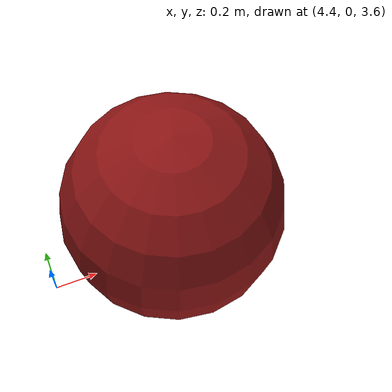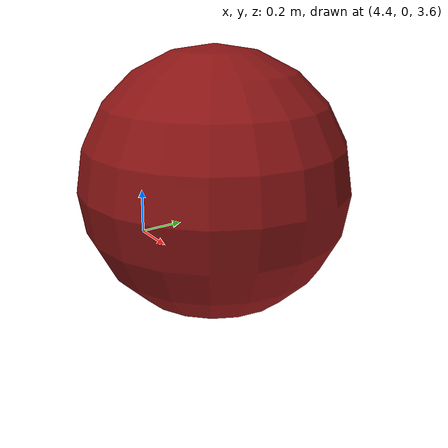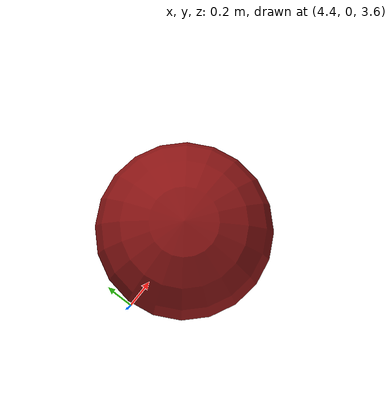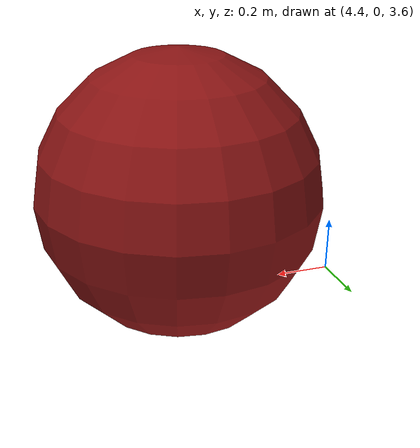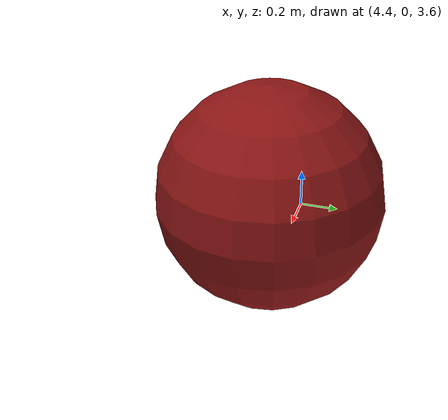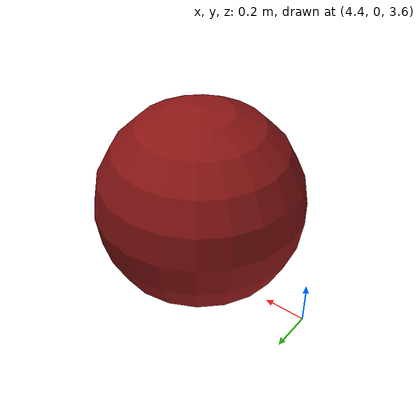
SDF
<?xml version="1.0" encoding="UTF-8"?>
<sdf version="1.9">
  <world name="simple_windy_balloon">
    <physics type="ode">
      <max_step_size>0.004</max_step_size>
      <real_time_factor>1.0</real_time_factor>
      <real_time_update_rate>250</real_time_update_rate>
    </physics>
    <gravity>0 0 -9.8</gravity>
    <magnetic_field>6e-06 2.3e-05 -4.2e-05</magnetic_field>
    <atmosphere type="adiabatic"/>

    <scene>
      <ambient>0.6 0.6 0.6 1</ambient>
      <background>0.5 0.7 0.9 1</background>
      <grid>false</grid>
      <sky>
        <clouds>
          <speed>4</speed>
        </clouds>
      </sky>
      <shadows>true</shadows>
    </scene>

    <light name="sun" type="directional">
      <pose>0 0 500 0 -0 0</pose>
      <cast_shadows>true</cast_shadows>
      <intensity>1</intensity>
      <direction>0.001 0.625 -0.78</direction>
      <diffuse>0.904 0.904 0.904 1</diffuse>
      <specular>0.271 0.271 0.271 1</specular>
      <attenuation>
        <range>2000</range>
        <linear>0</linear>
        <constant>1</constant>
        <quadratic>0</quadratic>
      </attenuation>
    </light>

    <model name="ground_plane">
      <static>true</static>
      <link name="link">
        <collision name="collision">
          <geometry>
            <plane>
              <normal>0 0 1</normal>
              <size>500 500</size>
            </plane>
          </geometry>
          <surface>
            <friction><ode/></friction>
            <bounce/>
            <contact/>
          </surface>
        </collision>
        <visual name="visual">
          <geometry>
            <plane>
              <normal>0 0 1</normal>
              <size>500 500</size>
            </plane>
          </geometry>
          <material>
            <ambient>0.4 0.5 0.3 1</ambient>
            <diffuse>0.4 0.6 0.3 1</diffuse>
            <specular>0.1 0.1 0.1 1</specular>
          </material>
        </visual>
        <inertial>
          <mass>1</mass>
          <inertia>
            <ixx>1</ixx><ixy>0</ixy><ixz>0</ixz>
            <iyy>1</iyy><iyz>0</iyz><izz>1</izz>
          </inertia>
        </inertial>
        <enable_wind>true</enable_wind>
      </link>
    </model>

    <!-- ★ 검붉은색 풍선 표적 ★ -->
    <!-- Gazebo ENU: X=동(드론 정면), Y=북, Z=위 -->
    <!-- 위치: 드론에서 동쪽 5m, 고도 4m -->
    <model name="balloon_red">
      <static>true</static>
      <pose>5 0 4 0 0 0</pose>
      <link name="balloon_link">
        <inertial>
          <mass>0.05</mass>
          <inertia>
            <ixx>0.001</ixx><ixy>0</ixy><ixz>0</ixz>
            <iyy>0.001</iyy><iyz>0</iyz><izz>0.001</izz>
          </inertia>
        </inertial>
        <visual name="balloon_visual">
          <geometry>
            <sphere>
              <radius>0.5</radius>
            </sphere>
          </geometry>
          <material>
            <!-- 검붉은색 (어두운 빨강): RGB(0.45, 0.05, 0.05) -->
            <ambient>0.45 0.05 0.05 1</ambient>
            <diffuse>0.55 0.08 0.08 1</diffuse>
            <specular>0.3 0.1 0.1 1</specular>
            <emissive>0.05 0 0 1</emissive>
          </material>
        </visual>
        <collision name="balloon_collision">
          <geometry>
            <sphere>
              <radius>0.5</radius>
            </sphere>
          </geometry>
        </collision>
      </link>
    </model>

    <!-- 보통풍 ~5.4 m/s -->
    <wind>
      <linear_velocity>5 2 0</linear_velocity>
    </wind>

    <spherical_coordinates>
      <surface_model>EARTH_WGS84</surface_model>
      <world_frame_orientation>ENU</world_frame_orientation>
      <latitude_deg>37.5665</latitude_deg>
      <longitude_deg>126.9780</longitude_deg>
      <elevation>30</elevation>
    </spherical_coordinates>

  </world>
</sdf>
